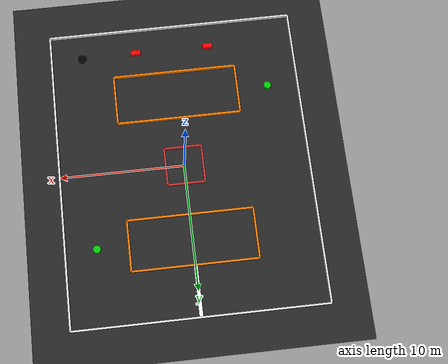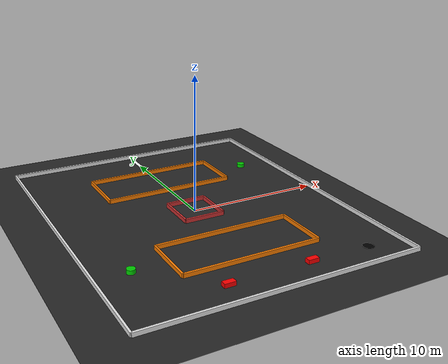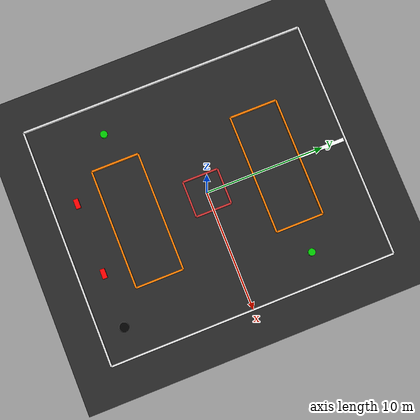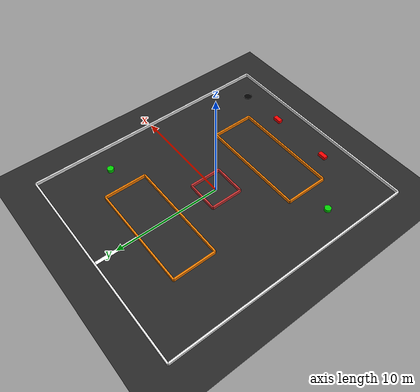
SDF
<?xml version="1.0" ?>
<sdf version="1.6">
  <world name="f1tenth_track">
    <physics name="1ms" type="ignored">
      <max_step_size>0.001</max_step_size>
      <real_time_factor>1.0</real_time_factor>
    </physics>

    <plugin filename="libignition-gazebo-physics-system.so" name="ignition::gazebo::systems::Physics"/>
    <plugin filename="libignition-gazebo-user-commands-system.so" name="ignition::gazebo::systems::UserCommands"/>
    <plugin filename="libignition-gazebo-scene-broadcaster-system.so" name="ignition::gazebo::systems::SceneBroadcaster"/>
    <plugin filename="libignition-gazebo-sensors-system.so" name="ignition::gazebo::systems::Sensors">
      <render_engine>ogre2</render_engine>
    </plugin>

    <light type="directional" name="sun">
      <cast_shadows>true</cast_shadows>
      <pose>0 0 10 0 0 0</pose>
      <diffuse>1 1 1 1</diffuse>
      <specular>0.5 0.5 0.5 1</specular>
      <direction>-0.5 0.1 -0.9</direction>
    </light>

    <!-- Track surface -->
    <model name="track_surface">
      <static>true</static>
      <link name="link">
        <collision name="collision">
          <geometry><plane><normal>0 0 1</normal><size>26 30</size></plane></geometry>
          <surface><friction><ode><mu>1.5</mu><mu2>1.5</mu2></ode></friction></surface>
        </collision>
        <visual name="visual">
          <geometry><plane><normal>0 0 1</normal><size>26 30</size></plane></geometry>
          <material><ambient>0.15 0.15 0.15 1</ambient><diffuse>0.15 0.15 0.15 1</diffuse></material>
        </visual>
      </link>
    </model>

    <!-- ========== OUTER WALLS (x ∈ [-10,10], y ∈ [-12,12]) ========== -->
    <model name="outer_north">
      <static>true</static>
      <pose>0 12 0.15 0 0 0</pose>
      <link name="link">
        <collision name="collision"><geometry><box><size>20 0.15 0.3</size></box></geometry></collision>
        <visual name="visual"><geometry><box><size>20 0.15 0.3</size></box></geometry>
          <material><ambient>0.9 0.9 0.9 1</ambient><diffuse>0.9 0.9 0.9 1</diffuse></material></visual>
      </link>
    </model>
    <model name="outer_south">
      <static>true</static>
      <pose>0 -12 0.15 0 0 0</pose>
      <link name="link">
        <collision name="collision"><geometry><box><size>20 0.15 0.3</size></box></geometry></collision>
        <visual name="visual"><geometry><box><size>20 0.15 0.3</size></box></geometry>
          <material><ambient>0.9 0.9 0.9 1</ambient><diffuse>0.9 0.9 0.9 1</diffuse></material></visual>
      </link>
    </model>
    <model name="outer_east">
      <static>true</static>
      <pose>10 0 0.15 0 0 0</pose>
      <link name="link">
        <collision name="collision"><geometry><box><size>0.15 24 0.3</size></box></geometry></collision>
        <visual name="visual"><geometry><box><size>0.15 24 0.3</size></box></geometry>
          <material><ambient>0.9 0.9 0.9 1</ambient><diffuse>0.9 0.9 0.9 1</diffuse></material></visual>
      </link>
    </model>
    <model name="outer_west">
      <static>true</static>
      <pose>-10 0 0.15 0 0 0</pose>
      <link name="link">
        <collision name="collision"><geometry><box><size>0.15 24 0.3</size></box></geometry></collision>
        <visual name="visual"><geometry><box><size>0.15 24 0.3</size></box></geometry>
          <material><ambient>0.9 0.9 0.9 1</ambient><diffuse>0.9 0.9 0.9 1</diffuse></material></visual>
      </link>
    </model>

    <!-- ========== UPPER ISLAND (x ∈ [-5,5], y ∈ [4,8]) ========== -->
    <model name="upper_north">
      <static>true</static>
      <pose>0 8 0.15 0 0 0</pose>
      <link name="link">
        <collision name="collision"><geometry><box><size>10 0.15 0.3</size></box></geometry></collision>
        <visual name="visual"><geometry><box><size>10 0.15 0.3</size></box></geometry>
          <material><ambient>1 0.5 0 1</ambient><diffuse>1 0.5 0 1</diffuse></material></visual>
      </link>
    </model>
    <model name="upper_south">
      <static>true</static>
      <pose>0 4 0.15 0 0 0</pose>
      <link name="link">
        <collision name="collision"><geometry><box><size>10 0.15 0.3</size></box></geometry></collision>
        <visual name="visual"><geometry><box><size>10 0.15 0.3</size></box></geometry>
          <material><ambient>1 0.5 0 1</ambient><diffuse>1 0.5 0 1</diffuse></material></visual>
      </link>
    </model>
    <model name="upper_east">
      <static>true</static>
      <pose>5 6 0.15 0 0 0</pose>
      <link name="link">
        <collision name="collision"><geometry><box><size>0.15 4 0.3</size></box></geometry></collision>
        <visual name="visual"><geometry><box><size>0.15 4 0.3</size></box></geometry>
          <material><ambient>1 0.5 0 1</ambient><diffuse>1 0.5 0 1</diffuse></material></visual>
      </link>
    </model>
    <model name="upper_west">
      <static>true</static>
      <pose>-5 6 0.15 0 0 0</pose>
      <link name="link">
        <collision name="collision"><geometry><box><size>0.15 4 0.3</size></box></geometry></collision>
        <visual name="visual"><geometry><box><size>0.15 4 0.3</size></box></geometry>
          <material><ambient>1 0.5 0 1</ambient><diffuse>1 0.5 0 1</diffuse></material></visual>
      </link>
    </model>

    <!-- ========== LOWER ISLAND (x ∈ [-5,5], y ∈ [-8,-4]) ========== -->
    <model name="lower_north">
      <static>true</static>
      <pose>0 -4 0.15 0 0 0</pose>
      <link name="link">
        <collision name="collision"><geometry><box><size>10 0.15 0.3</size></box></geometry></collision>
        <visual name="visual"><geometry><box><size>10 0.15 0.3</size></box></geometry>
          <material><ambient>1 0.5 0 1</ambient><diffuse>1 0.5 0 1</diffuse></material></visual>
      </link>
    </model>
    <model name="lower_south">
      <static>true</static>
      <pose>0 -8 0.15 0 0 0</pose>
      <link name="link">
        <collision name="collision"><geometry><box><size>10 0.15 0.3</size></box></geometry></collision>
        <visual name="visual"><geometry><box><size>10 0.15 0.3</size></box></geometry>
          <material><ambient>1 0.5 0 1</ambient><diffuse>1 0.5 0 1</diffuse></material></visual>
      </link>
    </model>
    <model name="lower_east">
      <static>true</static>
      <pose>5 -6 0.15 0 0 0</pose>
      <link name="link">
        <collision name="collision"><geometry><box><size>0.15 4 0.3</size></box></geometry></collision>
        <visual name="visual"><geometry><box><size>0.15 4 0.3</size></box></geometry>
          <material><ambient>1 0.5 0 1</ambient><diffuse>1 0.5 0 1</diffuse></material></visual>
      </link>
    </model>
    <model name="lower_west">
      <static>true</static>
      <pose>-5 -6 0.15 0 0 0</pose>
      <link name="link">
        <collision name="collision"><geometry><box><size>0.15 4 0.3</size></box></geometry></collision>
        <visual name="visual"><geometry><box><size>0.15 4 0.3</size></box></geometry>
          <material><ambient>1 0.5 0 1</ambient><diffuse>1 0.5 0 1</diffuse></material></visual>
      </link>
    </model>

    <!-- ========== CENTER SQUARE BLOCK (x ∈ [-1.5,1.5], y ∈ [-1.5,1.5]) ========== -->
    <model name="center_north">
      <static>true</static>
      <pose>0 1.5 0.15 0 0 0</pose>
      <link name="link">
        <collision name="collision"><geometry><box><size>3 0.15 0.3</size></box></geometry></collision>
        <visual name="visual"><geometry><box><size>3 0.15 0.3</size></box></geometry>
          <material><ambient>0.8 0.2 0.2 1</ambient><diffuse>0.8 0.2 0.2 1</diffuse></material></visual>
      </link>
    </model>
    <model name="center_south">
      <static>true</static>
      <pose>0 -1.5 0.15 0 0 0</pose>
      <link name="link">
        <collision name="collision"><geometry><box><size>3 0.15 0.3</size></box></geometry></collision>
        <visual name="visual"><geometry><box><size>3 0.15 0.3</size></box></geometry>
          <material><ambient>0.8 0.2 0.2 1</ambient><diffuse>0.8 0.2 0.2 1</diffuse></material></visual>
      </link>
    </model>
    <model name="center_east">
      <static>true</static>
      <pose>1.5 0 0.15 0 0 0</pose>
      <link name="link">
        <collision name="collision"><geometry><box><size>0.15 3 0.3</size></box></geometry></collision>
        <visual name="visual"><geometry><box><size>0.15 3 0.3</size></box></geometry>
          <material><ambient>0.8 0.2 0.2 1</ambient><diffuse>0.8 0.2 0.2 1</diffuse></material></visual>
      </link>
    </model>
    <model name="center_west">
      <static>true</static>
      <pose>-1.5 0 0.15 0 0 0</pose>
      <link name="link">
        <collision name="collision"><geometry><box><size>0.15 3 0.3</size></box></geometry></collision>
        <visual name="visual"><geometry><box><size>0.15 3 0.3</size></box></geometry>
          <material><ambient>0.8 0.2 0.2 1</ambient><diffuse>0.8 0.2 0.2 1</diffuse></material></visual>
      </link>
    </model>

    <!-- ========== STATIC OBSTACLES ========== -->
    <model name="obs_top">
      <static>true</static>
      <pose>3 -10 0.15 0 0 0</pose>
      <link name="link">
        <collision name="collision"><geometry><box><size>0.8 0.4 0.3</size></box></geometry></collision>
        <visual name="visual"><geometry><box><size>0.8 0.4 0.3</size></box></geometry>
          <material><ambient>1 0 0 1</ambient><diffuse>1 0 0 1</diffuse></material></visual>
      </link>
    </model>
    <model name="obs_bottom">
      <static>true</static>
      <pose>-3 -10 0.15 0 0 0</pose>
      <link name="link">
        <collision name="collision"><geometry><box><size>0.8 0.4 0.3</size></box></geometry></collision>
        <visual name="visual"><geometry><box><size>0.8 0.4 0.3</size></box></geometry>
          <material><ambient>1 0 0 1</ambient><diffuse>1 0 0 1</diffuse></material></visual>
      </link>
    </model>
    <model name="obs_right">
      <static>true</static>
      <pose>7.5 6 0.15 0 0 0</pose>
      <link name="link">
        <collision name="collision"><geometry><cylinder><radius>0.3</radius><length>0.3</length></cylinder></geometry></collision>
        <visual name="visual"><geometry><cylinder><radius>0.3</radius><length>0.3</length></cylinder></geometry>
          <material><ambient>0 0.8 0 1</ambient><diffuse>0 0.8 0 1</diffuse></material></visual>
      </link>
    </model>
    <model name="obs_left">
      <static>true</static>
      <pose>-7.5 -6 0.15 0 0 0</pose>
      <link name="link">
        <collision name="collision"><geometry><cylinder><radius>0.3</radius><length>0.3</length></cylinder></geometry></collision>
        <visual name="visual"><geometry><cylinder><radius>0.3</radius><length>0.3</length></cylinder></geometry>
          <material><ambient>0 0.8 0 1</ambient><diffuse>0 0.8 0 1</diffuse></material></visual>
      </link>
    </model>

    <!-- ========== START LINE ========== -->
    <model name="start_stripe">
      <static>true</static>
      <pose>0 10 0.01 0 0 0</pose>
      <link name="link">
        <visual name="visual">
          <geometry><box><size>0.3 4 0.01</size></box></geometry>
          <material><ambient>1 1 1 1</ambient><diffuse>1 1 1 1</diffuse></material>
        </visual>
      </link>
    </model>

    <!-- ========== GOAL MARKER ========== -->
    <model name="goal_marker">
      <static>true</static>
      <pose>7.5 -10 0.01 0 0 0</pose>
      <link name="link">
        <visual name="visual">
          <geometry><cylinder><radius>0.4</radius><length>0.02</length></cylinder></geometry>
          <material><ambient>0 0 0 1</ambient><diffuse>0 0 0 1</diffuse></material>
        </visual>
      </link>
    </model>

  </world>
</sdf>
